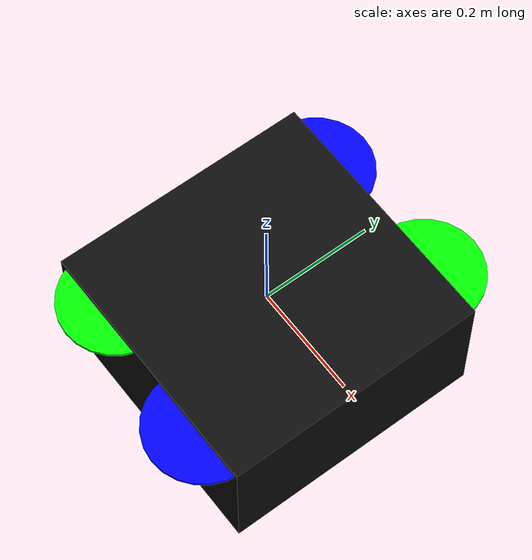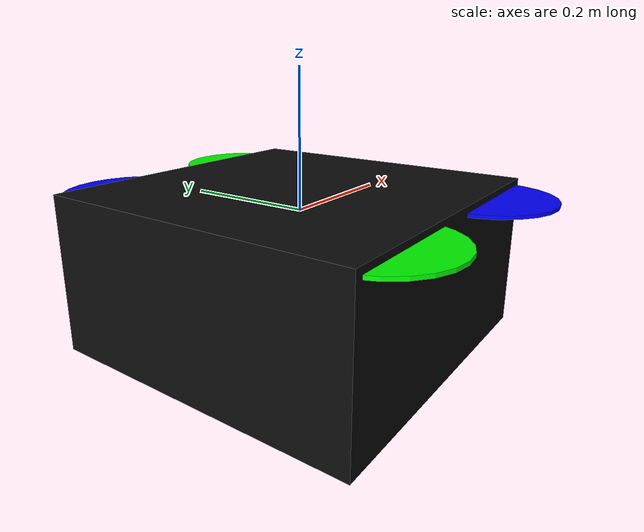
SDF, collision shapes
<?xml version='1.0'?>
<sdf version="1.9">
  <model name="iris_with_ardupilot_0">
    <include>
      <uri>model://iris_with_standoffs_male</uri>
    </include>

    <!--
      visual markers for debugging
      - blade root    - teal
      - blade tip     - orange
      - blade cp      - yellow
      - blade forward - red
      - blade upward  - blue
    -->

    <!-- plugins -->
    <plugin filename="gz-sim-joint-state-publisher-system"
      name="gz::sim::systems::JointStatePublisher">
    </plugin>
    <plugin filename="gz-sim-lift-drag-system"
        name="gz::sim::systems::LiftDrag">
      <a0>0.3</a0>
      <alpha_stall>1.4</alpha_stall>
      <cla>4.2500</cla>
      <cda>0.10</cda>
      <cma>0.0</cma>
      <cla_stall>-0.025</cla_stall>
      <cda_stall>0.0</cda_stall>
      <cma_stall>0.0</cma_stall>
      <area>0.002</area>
      <air_density>1.2041</air_density>
      <cp>0.084 0 0</cp>
      <forward>0 1 0</forward>
      <upward>0 0 1</upward>
      <link_name>iris_with_standoffs_male::rotor_0</link_name>
    </plugin>
    <plugin filename="gz-sim-lift-drag-system"
        name="gz::sim::systems::LiftDrag">
      <a0>0.3</a0>
      <alpha_stall>1.4</alpha_stall>
      <cla>4.2500</cla>
      <cda>0.10</cda>
      <cma>0.0</cma>
      <cla_stall>-0.025</cla_stall>
      <cda_stall>0.0</cda_stall>
      <cma_stall>0.0</cma_stall>
      <area>0.002</area>
      <air_density>1.2041</air_density>
      <cp>-0.084 0 0</cp>
      <forward>0 -1 0</forward>
      <upward>0 0 1</upward>
      <link_name>iris_with_standoffs_male::rotor_0</link_name>
    </plugin>

    <plugin filename="gz-sim-lift-drag-system"
        name="gz::sim::systems::LiftDrag">
      <a0>0.3</a0>
      <alpha_stall>1.4</alpha_stall>
      <cla>4.2500</cla>
      <cda>0.10</cda>
      <cma>0.0</cma>
      <cla_stall>-0.025</cla_stall>
      <cda_stall>0.0</cda_stall>
      <cma_stall>0.0</cma_stall>
      <area>0.002</area>
      <air_density>1.2041</air_density>
      <cp>0.084 0 0</cp>
      <forward>0 1 0</forward>
      <upward>0 0 1</upward>
      <link_name>iris_with_standoffs_male::rotor_1</link_name>
    </plugin>
    <plugin filename="gz-sim-lift-drag-system"
        name="gz::sim::systems::LiftDrag">
      <a0>0.3</a0>
      <alpha_stall>1.4</alpha_stall>
      <cla>4.2500</cla>
      <cda>0.10</cda>
      <cma>0.0</cma>
      <cla_stall>-0.025</cla_stall>
      <cda_stall>0.0</cda_stall>
      <cma_stall>0.0</cma_stall>
      <area>0.002</area>
      <air_density>1.2041</air_density>
      <cp>-0.084 0 0</cp>
      <forward>0 -1 0</forward>
      <upward>0 0 1</upward>
      <link_name>iris_with_standoffs_male::rotor_1</link_name>
    </plugin>

    <plugin filename="gz-sim-lift-drag-system"
        name="gz::sim::systems::LiftDrag">
      <a0>0.3</a0>
      <alpha_stall>1.4</alpha_stall>
      <cla>4.2500</cla>
      <cda>0.10</cda>
      <cma>0.0</cma>
      <cla_stall>-0.025</cla_stall>
      <cda_stall>0.0</cda_stall>
      <cma_stall>0.0</cma_stall>
      <area>0.002</area>
      <air_density>1.2041</air_density>
      <cp>0.084 0 0</cp>
      <forward>0 -1 0</forward>
      <upward>0 0 1</upward>
      <link_name>iris_with_standoffs_male::rotor_2</link_name>
    </plugin>
    <plugin filename="gz-sim-lift-drag-system"
        name="gz::sim::systems::LiftDrag">
      <a0>0.3</a0>
      <alpha_stall>1.4</alpha_stall>
      <cla>4.2500</cla>
      <cda>0.10</cda>
      <cma>0.0</cma>
      <cla_stall>-0.025</cla_stall>
      <cda_stall>0.0</cda_stall>
      <cma_stall>0.0</cma_stall>
      <area>0.002</area>
      <air_density>1.2041</air_density>
      <cp>-0.084 0 0</cp>
      <forward>0 1 0</forward>
      <upward>0 0 1</upward>
      <link_name>iris_with_standoffs_male::rotor_2</link_name>
    </plugin>

    <plugin filename="gz-sim-lift-drag-system"
        name="gz::sim::systems::LiftDrag">
      <a0>0.3</a0>
      <alpha_stall>1.4</alpha_stall>
      <cla>4.2500</cla>
      <cda>0.10</cda>
      <cma>0.0</cma>
      <cla_stall>-0.025</cla_stall>
      <cda_stall>0.0</cda_stall>
      <cma_stall>0.0</cma_stall>
      <area>0.002</area>
      <air_density>1.2041</air_density>
      <cp>0.084 0 0</cp>
      <forward>0 -1 0</forward>
      <upward>0 0 1</upward>
      <link_name>iris_with_standoffs_male::rotor_3</link_name>
    </plugin>
    <plugin filename="gz-sim-lift-drag-system"
        name="gz::sim::systems::LiftDrag">
      <a0>0.3</a0>
      <alpha_stall>1.4</alpha_stall>
      <cla>4.2500</cla>
      <cda>0.10</cda>
      <cma>0.0</cma>
      <cla_stall>-0.025</cla_stall>
      <cda_stall>0.0</cda_stall>
      <cma_stall>0.0</cma_stall>
      <area>0.002</area>
      <air_density>1.2041</air_density>
      <cp>-0.084 0 0</cp>
      <forward>0 1 0</forward>
      <upward>0 0 1</upward>
      <link_name>iris_with_standoffs_male::rotor_3</link_name>
    </plugin>

    <plugin filename="gz-sim-apply-joint-force-system"
      name="gz::sim::systems::ApplyJointForce">
      <joint_name>iris_with_standoffs_male::rotor_0_joint</joint_name>
    </plugin>
    <plugin filename="gz-sim-apply-joint-force-system"
      name="gz::sim::systems::ApplyJointForce">
      <joint_name>iris_with_standoffs_male::rotor_1_joint</joint_name>
    </plugin>
    <plugin filename="gz-sim-apply-joint-force-system"
      name="gz::sim::systems::ApplyJointForce">
      <joint_name>iris_with_standoffs_male::rotor_2_joint</joint_name>
    </plugin>
    <plugin filename="gz-sim-apply-joint-force-system"
      name="gz::sim::systems::ApplyJointForce">
      <joint_name>iris_with_standoffs_male::rotor_3_joint</joint_name>
    </plugin>

    <plugin name="ArduPilotPlugin"
      filename="ArduPilotPlugin">
      <!-- Port settings -->
      <fdm_addr>127.0.0.1</fdm_addr>
      <fdm_port_in>9002</fdm_port_in>
      <connectionTimeoutMaxCount>5</connectionTimeoutMaxCount>
      <lock_step>0</lock_step>
      <no_time_sync>1</no_time_sync>
      <have_32_channels>0</have_32_channels>

      <!-- Frame conventions
        Require by ArduPilot: change model and gazebo from XYZ to XY-Z coordinates
      -->
      <modelXYZToAirplaneXForwardZDown degrees="true">0 0 0 180 0 0</modelXYZToAirplaneXForwardZDown>
      <gazeboXYZToNED degrees="true">0 0 0 180 0 90</gazeboXYZToNED>

      <!-- Sensors -->
      <imuName>iris_with_standoffs_male::imu_link::imu_sensor</imuName>

      <!--
          incoming control command [0, 1]
          so offset it by 0 to get [0, 1]
          and divide max target by 1.
          offset = 0
          multiplier = 838 max rpm / 1 = 838
        -->
      <control channel="0">
        <jointName>iris_with_standoffs_male::rotor_0_joint</jointName>
        <useForce>1</useForce>
        <multiplier>838</multiplier>
        <offset>0</offset>
        <servo_min>1100</servo_min>
        <servo_max>1900</servo_max>
        <type>VELOCITY</type>
        <p_gain>0.20</p_gain>
        <i_gain>0</i_gain>
        <d_gain>0</d_gain>
        <i_max>0</i_max>
        <i_min>0</i_min>
        <cmd_max>2.5</cmd_max>
        <cmd_min>-2.5</cmd_min>
        <controlVelocitySlowdownSim>1</controlVelocitySlowdownSim>
      </control>

      <control channel="1">
        <jointName>iris_with_standoffs_male::rotor_1_joint</jointName>
        <useForce>1</useForce>
        <multiplier>838</multiplier>
        <offset>0</offset>
        <servo_min>1100</servo_min>
        <servo_max>1900</servo_max>
        <type>VELOCITY</type>
        <p_gain>0.20</p_gain>
        <i_gain>0</i_gain>
        <d_gain>0</d_gain>
        <i_max>0</i_max>
        <i_min>0</i_min>
        <cmd_max>2.5</cmd_max>
        <cmd_min>-2.5</cmd_min>
        <controlVelocitySlowdownSim>1</controlVelocitySlowdownSim>
      </control>

      <control channel="2">
        <jointName>iris_with_standoffs_male::rotor_2_joint</jointName>
        <useForce>1</useForce>
        <multiplier>-838</multiplier>
        <offset>0</offset>
        <servo_min>1100</servo_min>
        <servo_max>1900</servo_max>
        <type>VELOCITY</type>
        <p_gain>0.20</p_gain>
        <i_gain>0</i_gain>
        <d_gain>0</d_gain>
        <i_max>0</i_max>
        <i_min>0</i_min>
        <cmd_max>2.5</cmd_max>
        <cmd_min>-2.5</cmd_min>
        <controlVelocitySlowdownSim>1</controlVelocitySlowdownSim>
      </control>

      <control channel="3">
        <jointName>iris_with_standoffs_male::rotor_3_joint</jointName>
        <useForce>1</useForce>
        <multiplier>-838</multiplier>
        <offset>0</offset>
        <servo_min>1100</servo_min>
        <servo_max>1900</servo_max>
        <type>VELOCITY</type>
        <p_gain>0.20</p_gain>
        <i_gain>0</i_gain>
        <d_gain>0</d_gain>
        <i_max>0</i_max>
        <i_min>0</i_min>
        <cmd_max>2.5</cmd_max>
        <cmd_min>-2.5</cmd_min>
        <controlVelocitySlowdownSim>1</controlVelocitySlowdownSim>
      </control>

    </plugin>

  </model>
</sdf>

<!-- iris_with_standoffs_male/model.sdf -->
<sdf version='1.9'>
  <model name='iris_with_standoffs_male'>
    <pose>0 0 0 0 0 0</pose>
    <link name='base_link'>
      <velocity_decay>
        <linear>0.0</linear>
        <angular>0.0</angular>
      </velocity_decay>
      <inertial>
        <pose>0 0 0 0 0 0</pose>
        <mass>1.5</mass>
        <inertia>
          <ixx>0.008</ixx>
          <ixy>0</ixy>
          <ixz>0</ixz>
          <iyy>0.015</iyy>
          <iyz>0</iyz>
          <izz>0.017</izz>
        </inertia>
      </inertial>
      <collision name='base_collision'>
        <pose>0 0 -0.08 0 0 0</pose>
        <geometry>
          <box>
            <size>0.47 0.47 0.23</size>
          </box>
        </geometry>
        <surface>
          <contact>
            <ode>
              <max_vel>100.0</max_vel>
              <min_depth>0.001</min_depth>
            </ode>
          </contact>
          <friction>
            <ode>
              <mu>100000.0</mu>
              <mu2>100000.0</mu2>
            </ode>
          </friction>
        </surface>
      </collision>
      <visual name='base_visual'>
        <geometry>
          <mesh>
            <uri>model://iris_with_standoffs_male/meshes/iris.dae</uri>
          </mesh>
        </geometry>
        <material>
          <ambient>0.05 0.05 0.05</ambient>
          <diffuse>0.05 0.05 0.05</diffuse>
          <specular>1 1 1 1</specular>
          <pbr>
            <metal>
              <metalness>0.5</metalness>
              <roughness>0.5</roughness>
            </metal>
          </pbr>
        </material>
      </visual>
      <visual name='male_connector_visual'>
        <pose>0 0 -0.045 0 0 0</pose>
        <geometry>
          <mesh>
            <uri>model://male_drone/meshes/MaleDrone.stl</uri>
            <scale>0.001 0.001 0.001</scale>
          </mesh>
        </geometry>
        <material>
          <ambient>0 0.35 1 1</ambient>
          <diffuse>0 0.35 1 1</diffuse>
          <specular>0.8 0.8 0.8 1</specular>
        </material>
      </visual>

      <collision name='male_connector_collision'>
        <pose>0 0 -0.045 0 0 0</pose>
        <geometry>
          <box>
            <size>0.16 0.08 0.04</size>
          </box>
        </geometry>
      </collision>

      <visual name='front_left_leg_visual'>
        <pose>0.123 0.22 -0.11 0 0 0</pose>
        <geometry>
          <cylinder>
            <radius>0.005</radius>
            <length>0.17</length>
          </cylinder>
        </geometry>
        <material>
          <ambient>0.05 0.05 0.05</ambient>
          <diffuse>0.05 0.05 0.05</diffuse>
          <specular>0.01 0.01 0.01 1.0</specular>
          <pbr>
            <metal>
              <metalness>0.5</metalness>
              <roughness>0.5</roughness>
            </metal>
          </pbr>
        </material>
      </visual>
      <visual name='front_right_leg_visual'>
        <pose>0.123 -0.22 -0.11 0 0 0</pose>
        <geometry>
          <cylinder>
            <radius>0.005</radius>
            <length>0.17</length>
          </cylinder>
        </geometry>
        <material>
          <ambient>0.05 0.05 0.05</ambient>
          <diffuse>0.05 0.05 0.05</diffuse>
          <specular>0.01 0.01 0.01 1.0</specular>
          <pbr>
            <metal>
              <metalness>0.5</metalness>
              <roughness>0.5</roughness>
            </metal>
          </pbr>
        </material>
      </visual>
      <visual name='rear_left_leg_visual'>
        <pose>-0.140 0.21 -0.11 0 0 0</pose>
        <geometry>
          <cylinder>
            <radius>0.005</radius>
            <length>0.17</length>
          </cylinder>
        </geometry>
        <material>
          <ambient>0.05 0.05 0.05</ambient>
          <diffuse>0.05 0.05 0.05</diffuse>
          <specular>0.01 0.01 0.01 1.0</specular>
          <pbr>
            <metal>
              <metalness>0.5</metalness>
              <roughness>0.5</roughness>
            </metal>
          </pbr>
        </material>
      </visual>
      <visual name='rear_right_leg_visual'>
        <pose>-0.140 -0.21 -0.11 0 0 0</pose>
        <geometry>
          <cylinder>
            <radius>0.005</radius>
            <length>0.17</length>
          </cylinder>
        </geometry>
        <material>
          <ambient>0.05 0.05 0.05</ambient>
          <diffuse>0.05 0.05 0.05</diffuse>
          <specular>0.01 0.01 0.01 1.0</specular>
          <pbr>
            <metal>
              <metalness>0.5</metalness>
              <roughness>0.5</roughness>
            </metal>
          </pbr>
        </material>
      </visual>
    </link>
    <link name='imu_link'>
      <inertial>
        <pose>0 0 0 0 0 0</pose>
        <mass>0.15</mass>
        <inertia>
          <ixx>0.00001</ixx>
          <ixy>0</ixy>
          <ixz>0</ixz>
          <iyy>0.00002</iyy>
          <iyz>0</iyz>
          <izz>0.00002</izz>
        </inertia>
      </inertial>
      <sensor name="imu_sensor" type="imu">
        <gz_frame_id>imu_link</gz_frame_id>
        <pose degrees="true">0 0 0 180 0 0</pose>
        <always_on>1</always_on>
        <update_rate>1000.0</update_rate>
      </sensor>
    </link>
    <joint name='imu_joint' type='revolute'>
      <child>imu_link</child>
      <parent>base_link</parent>
      <axis>
        <xyz>0 0 1</xyz>
        <limit>
          <lower>0</lower>
          <upper>0</upper>
          <effort>0</effort>
          <velocity>0</velocity>
        </limit>
        <dynamics>
          <damping>1.0</damping>
        </dynamics>
      </axis>
    </joint>
    <link name='rotor_0'>
      <pose>0.13 -0.22 0.023 0 0 0</pose>
      <inertial>
        <pose>0 0 0 0 0 0</pose>
        <mass>0.025</mass>
        <inertia>
          <ixx>9.75e-06</ixx>
          <ixy>0</ixy>
          <ixz>0</ixz>
          <iyy>0.000166704</iyy>
          <iyz>0</iyz>
          <izz>0.000167604</izz>
        </inertia>
      </inertial>
      <collision name='rotor_0_collision'>
        <pose>0 0 0 0 0 0</pose>
        <geometry>
          <cylinder>
            <length>0.005</length>
            <radius>0.1</radius>
          </cylinder>
        </geometry>
        <surface>
          <contact>
            <ode/>
          </contact>
          <friction>
            <ode/>
          </friction>
        </surface>
      </collision>
      <visual name='rotor_0_visual'>
        <pose>0 0 0 0 0 0</pose>
        <geometry>
          <mesh>
            <scale>1 1 1</scale>
            <uri>model://iris_with_standoffs_male/meshes/iris_prop_ccw.dae</uri>
          </mesh>
        </geometry>
        <material>
          <ambient>0 0 1</ambient>
          <diffuse>0 0 1</diffuse>
          <specular>1 1 1 1</specular>
          <pbr>
            <metal>
              <metalness>0.5</metalness>
              <roughness>0.5</roughness>
            </metal>
          </pbr>
        </material>
      </visual>
      <gravity>1</gravity>
      <velocity_decay/>
      <self_collide>0</self_collide>
    </link>
    <joint name='rotor_0_joint' type='revolute'>
      <child>rotor_0</child>
      <parent>base_link</parent>
      <axis>
        <xyz>0 0 1</xyz>
        <limit>
          <lower>-1e+16</lower>
          <upper>1e+16</upper>
        </limit>
        <dynamics>
          <damping>0.004</damping>
        </dynamics>
      </axis>
      <physics>
        <ode>
          <implicit_spring_damper>1</implicit_spring_damper>
        </ode>
      </physics>
    </joint>
    <link name='rotor_1'>
      <pose>-0.13 0.2 0.023 0 0 0</pose>
      <inertial>
        <pose>0 0 0 0 0 0</pose>
        <mass>0.025</mass>
        <inertia>
          <ixx>9.75e-06</ixx>
          <ixy>0</ixy>
          <ixz>0</ixz>
          <iyy>0.000166704</iyy>
          <iyz>0</iyz>
          <izz>0.000167604</izz>
        </inertia>
      </inertial>
      <collision name='rotor_1_collision'>
        <pose>0 0 0 0 0 0</pose>
        <geometry>
          <cylinder>
            <length>0.005</length>
            <radius>0.1</radius>
          </cylinder>
        </geometry>
        <surface>
          <contact>
            <ode/>
          </contact>
          <friction>
            <ode/>
          </friction>
        </surface>
      </collision>
      <visual name='rotor_1_visual'>
        <pose>0 0 0 0 0 0</pose>
        <geometry>
          <mesh>
            <scale>1 1 1</scale>
            <uri>model://iris_with_standoffs_male/meshes/iris_prop_ccw.dae</uri>
          </mesh>
        </geometry>
        <material>
          <ambient>0 0 1 1</ambient>
          <diffuse>0 0 1 1</diffuse>
          <specular>1 1 1 1</specular>
          <pbr>
            <metal>
              <metalness>0.5</metalness>
              <roughness>0.5</roughness>
            </metal>
          </pbr>
        </material>
      </visual>
      <gravity>1</gravity>
      <velocity_decay/>
      <self_collide>0</self_collide>
    </link>
    <joint name='rotor_1_joint' type='revolute'>
      <child>rotor_1</child>
      <parent>base_link</parent>
      <axis>
        <xyz>0 0 1</xyz>
        <limit>
          <lower>-1e+16</lower>
          <upper>1e+16</upper>
        </limit>
        <dynamics>
          <damping>0.004</damping>
        </dynamics>
      </axis>
      <physics>
        <ode>
          <implicit_spring_damper>1</implicit_spring_damper>
        </ode>
      </physics>
    </joint>
    <link name='rotor_2'>
      <pose>0.13 0.22 0.023 0 0 0</pose>
      <inertial>
        <pose>0 0 0 0 0 0</pose>
        <mass>0.025</mass>
        <inertia>
          <ixx>9.75e-06</ixx>
          <ixy>0</ixy>
          <ixz>0</ixz>
          <iyy>0.000166704</iyy>
          <iyz>0</iyz>
          <izz>0.000167604</izz>
        </inertia>
      </inertial>
      <collision name='rotor_2_collision'>
        <pose>0 0 0 0 0 0</pose>
        <geometry>
          <cylinder>
            <length>0.005</length>
            <radius>0.1</radius>
          </cylinder>
        </geometry>
        <surface>
          <contact>
            <ode/>
          </contact>
          <friction>
            <ode/>
          </friction>
        </surface>
      </collision>
      <visual name='rotor_2_visual'>
        <pose>0 0 0 0 0 0</pose>
        <geometry>
          <mesh>
            <scale>1 1 1</scale>
            <uri>model://iris_with_standoffs_male/meshes/iris_prop_cw.dae</uri>
          </mesh>
        </geometry>
        <material>
          <ambient>0 1 0</ambient>
          <diffuse>0 1 0</diffuse>
          <specular>1 1 1 1</specular>
          <pbr>
            <metal>
              <metalness>0.5</metalness>
              <roughness>0.5</roughness>
            </metal>
          </pbr>
        </material>
      </visual>
      <gravity>1</gravity>
      <velocity_decay/>
      <self_collide>0</self_collide>
    </link>
    <joint name='rotor_2_joint' type='revolute'>
      <child>rotor_2</child>
      <parent>base_link</parent>
      <axis>
        <xyz>0 0 1</xyz>
        <limit>
          <lower>-1e+16</lower>
          <upper>1e+16</upper>
        </limit>
        <dynamics>
          <damping>0.004</damping>
        </dynamics>
      </axis>
      <physics>
        <ode>
          <implicit_spring_damper>1</implicit_spring_damper>
        </ode>
      </physics>
    </joint>
    <link name='rotor_3'>
      <pose>-0.13 -0.2 0.023 0 0 0</pose>
      <inertial>
        <pose>0 0 0 0 0 0</pose>
        <mass>0.025</mass>
        <inertia>
          <ixx>9.75e-06</ixx>
          <ixy>0</ixy>
          <ixz>0</ixz>
          <iyy>0.000166704</iyy>
          <iyz>0</iyz>
          <izz>0.000167604</izz>
        </inertia>
      </inertial>
      <collision name='rotor_3_collision'>
        <pose>0 0 0 0 0 0</pose>
        <geometry>
          <cylinder>
            <length>0.005</length>
            <radius>0.1</radius>
          </cylinder>
        </geometry>
        <surface>
          <contact>
            <ode/>
          </contact>
          <friction>
            <ode/>
          </friction>
        </surface>
      </collision>
      <visual name='rotor_3_visual'>
        <pose>0 0 0 0 0 0</pose>
        <geometry>
          <mesh>
            <scale>1 1 1</scale>
            <uri>model://iris_with_standoffs_male/meshes/iris_prop_cw.dae</uri>
          </mesh>
        </geometry>
        <material>
          <ambient>0 1 0</ambient>
          <diffuse>0 1 0</diffuse>
          <specular>1 1 1 1</specular>
          <pbr>
            <metal>
              <metalness>0.5</metalness>
              <roughness>0.5</roughness>
            </metal>
          </pbr>
        </material>
      </visual>
      <gravity>1</gravity>
      <velocity_decay/>
      <self_collide>0</self_collide>
    </link>
    <joint name='rotor_3_joint' type='revolute'>
      <child>rotor_3</child>
      <parent>base_link</parent>
      <axis>
        <xyz>0 0 1</xyz>
        <limit>
          <lower>-1e+16</lower>
          <upper>1e+16</upper>
        </limit>
        <dynamics>
          <damping>0.004</damping>
        </dynamics>
      </axis>
      <physics>
        <ode>
          <implicit_spring_damper>1</implicit_spring_damper>
        </ode>
      </physics>
    </joint>

    <plugin filename="libgz-sim-detachable-joint-system.so"
            name="gz::sim::systems::DetachableJoint">
      <parent_link>base_link</parent_link>
      <child_model>drone2</child_model>
      <child_model_link>base_link</child_model_link>
      <attach_topic>/model/drone1/detachable_joint/attach</attach_topic>
      <detach_topic>/model/drone1/detachable_joint/detach</detach_topic>
    </plugin>

  </model>
</sdf>
